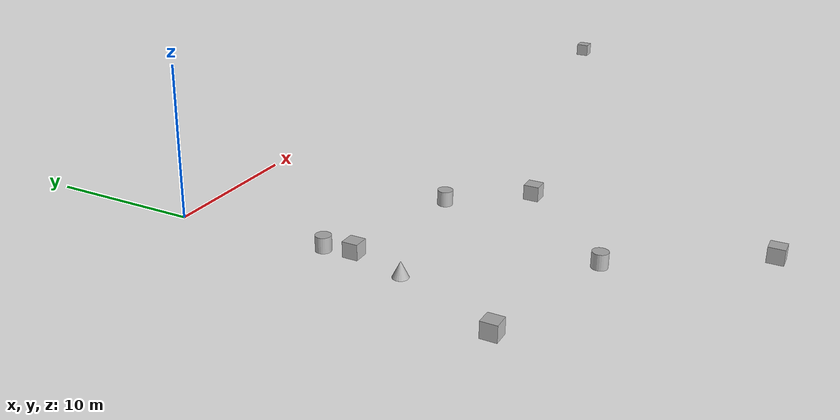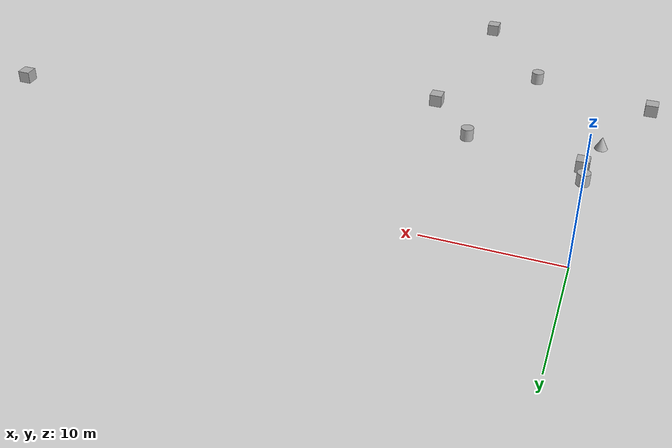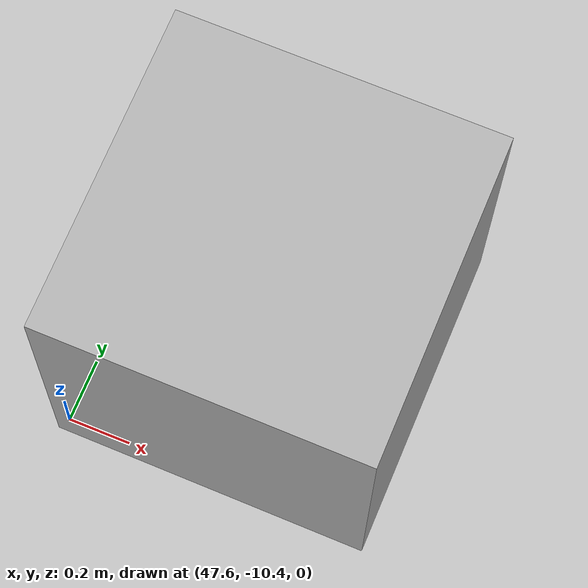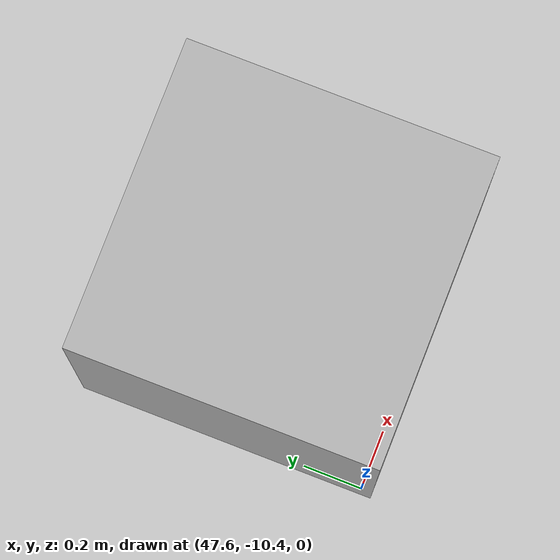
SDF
<sdf version="1.10">
 <world name="empty">
  <physics name="1ms" type="ignored">
   <max_step_size>0.001</max_step_size>
   <real_time_factor>1</real_time_factor>
   <real_time_update_rate>1000</real_time_update_rate>
  </physics>
  <plugin name="gz::sim::systems::Physics" filename="gz-sim-physics-system"/>
  <plugin name="gz::sim::systems::UserCommands" filename="gz-sim-user-commands-system"/>
  <plugin name="gz::sim::systems::SceneBroadcaster" filename="gz-sim-scene-broadcaster-system"/>
  <scene>
   <grid>false</grid>
   <ambient>0.400000006 0.400000006 0.400000006 1</ambient>
   <background>0.699999988 0.699999988 0.699999988 1</background>
   <shadows>true</shadows>
  </scene>
  <gravity>0 0 -9.8000000000000007</gravity>
  <magnetic_field>5.5644999999999998e-06 2.2875799999999999e-05 -4.2388400000000002e-05</magnetic_field>
  <atmosphere type="adiabatic"/>
  <model name="box">
   <pose>0.69357451987712349 -11.985110753051883 0.50185949781924333 0.0012477269397587671 -0.00045582970985441531 2.2585066676654038e-08</pose>
   <link name="box_link">
    <inertial>
     <inertia><ixx>0.16666</ixx><ixy>0</ixy><ixz>0</ixz><iyy>0.16666</iyy><iyz>0</iyz><izz>0.16666</izz></inertia>
     <mass>1</mass>
    </inertial>
    <collision name="box_collision"><geometry><box><size>1 1 1</size></box></geometry></collision>
    <visual name="box_visual">
     <geometry><box><size>1 1 1</size></box></geometry>
     <material>
      <ambient>0.300000012 0.300000012 0.300000012 1</ambient>
      <diffuse>0.699999988 0.699999988 0.699999988 1</diffuse>
      <specular>1 1 1 1</specular>
     </material>
    </visual>
   </link>
   <static>false</static>
  </model>
  <model name="cone">
   <pose>-0.29579046827561367 -15.584007843286578 0.49999999993296756 5.2546253485254245e-17 -7.7132841040438969e-10 -1.0595303058796868e-22</pose>
   <link name="cone_link">
    <inertial>
     <inertia>
      <ixx>0.074999999999999997</ixx>
      <ixy>0</ixy>
      <ixz>0</ixz>
      <iyy>0.074999999999999997</iyy>
      <iyz>0</iyz>
      <izz>0.074999999999999997</izz>
     </inertia>
     <mass>1</mass>
    </inertial>
    <collision name="cone_collision">
     <geometry><cone><radius>0.5</radius><length>1</length></cone></geometry>
    </collision>
    <visual name="cone_visual">
     <geometry><cone><radius>0.5</radius><length>1</length></cone></geometry>
     <material>
      <ambient>0.300000012 0.300000012 0.300000012 1</ambient>
      <diffuse>0.699999988 0.699999988 0.699999988 1</diffuse>
      <specular>1 1 1 1</specular>
     </material>
    </visual>
   </link>
   <static>false</static>
  </model>
  <model name="box_0">
   <pose>13.458248157044816 -18.110918317797182 0.4999999999597356 -8.6463549466392587e-12 -2.3215706448567523e-12 1.8441425274503929e-18</pose>
   <link name="box_link">
    <inertial>
     <inertia><ixx>0.16666</ixx><ixy>0</ixy><ixz>0</ixz><iyy>0.16666</iyy><iyz>0</iyz><izz>0.16666</izz></inertia>
     <mass>1</mass>
    </inertial>
    <collision name="box_collision"><geometry><box><size>1 1 1</size></box></geometry></collision>
    <visual name="box_visual">
     <geometry><box><size>1 1 1</size></box></geometry>
     <material>
      <ambient>0.300000012 0.300000012 0.300000012 1</ambient>
      <diffuse>0.699999988 0.699999988 0.699999988 1</diffuse>
      <specular>1 1 1 1</specular>
     </material>
    </visual>
   </link>
   <static>false</static>
  </model>
  <model name="cylinder">
   <pose>0.41255362425532643 -10.083280401482723 0.50964704770108205 5.5674773538518817e-07 -4.3176687859759324e-07 -2.5208397468383906e-07</pose>
   <link name="cylinder_link">
    <inertial>
     <inertia>
      <ixx>0.14580000000000001</ixx>
      <ixy>0</ixy>
      <ixz>0</ixz>
      <iyy>0.14580000000000001</iyy>
      <iyz>0</iyz>
      <izz>0.125</izz>
     </inertia>
     <mass>1</mass>
    </inertial>
    <collision name="cylinder_collision">
     <geometry><cylinder><radius>0.5</radius><length>1</length></cylinder></geometry>
    </collision>
    <visual name="cylinder_visual">
     <geometry><cylinder><radius>0.5</radius><length>1</length></cylinder></geometry>
     <material>
      <ambient>0.300000012 0.300000012 0.300000012 1</ambient>
      <diffuse>0.699999988 0.699999988 0.699999988 1</diffuse>
      <specular>1 1 1 1</specular>
     </material>
    </visual>
   </link>
   <static>false</static>
  </model>
  <model name="cylinder_0">
   <pose>9.7988777228697437 -13.463585100805807 0.50262408949519 0.0052622216854380077 2.2028929841141618e-18 -2.0674054396126504e-19</pose>
   <link name="cylinder_link">
    <inertial>
     <inertia>
      <ixx>0.14580000000000001</ixx>
      <ixy>0</ixy>
      <ixz>0</ixz>
      <iyy>0.14580000000000001</iyy>
      <iyz>0</iyz>
      <izz>0.125</izz>
     </inertia>
     <mass>1</mass>
    </inertial>
    <collision name="cylinder_collision">
     <geometry><cylinder><radius>0.5</radius><length>1</length></cylinder></geometry>
    </collision>
    <visual name="cylinder_visual">
     <geometry><cylinder><radius>0.5</radius><length>1</length></cylinder></geometry>
     <material>
      <ambient>0.300000012 0.300000012 0.300000012 1</ambient>
      <diffuse>0.699999988 0.699999988 0.699999988 1</diffuse>
      <specular>1 1 1 1</specular>
     </material>
    </visual>
   </link>
   <static>false</static>
  </model>
  <model name="cylinder_1">
   <pose>6.2098779251258511 -24.905284150379373 0.49999942707392359 2.095250020331423e-19 -4.3892048951938632e-11 3.3150506112213691e-20</pose>
   <link name="cylinder_link">
    <inertial>
     <inertia>
      <ixx>0.14580000000000001</ixx>
      <ixy>0</ixy>
      <ixz>0</ixz>
      <iyy>0.14580000000000001</iyy>
      <iyz>0</iyz>
      <izz>0.125</izz>
     </inertia>
     <mass>1</mass>
    </inertial>
    <collision name="cylinder_collision">
     <geometry><cylinder><radius>0.5</radius><length>1</length></cylinder></geometry>
    </collision>
    <visual name="cylinder_visual">
     <geometry><cylinder><radius>0.5</radius><length>1</length></cylinder></geometry>
     <material>
      <ambient>0.300000012 0.300000012 0.300000012 1</ambient>
      <diffuse>0.699999988 0.699999988 0.699999988 1</diffuse>
      <specular>1 1 1 1</specular>
     </material>
    </visual>
   </link>
   <static>false</static>
  </model>
  <model name="box_1">
   <pose>48.080626031002041 -9.9373798960732351 0.50733659565500155 6.7191817585172628e-06 8.218309769234689e-06 1.2498002450084426e-05</pose>
   <link name="box_link">
    <inertial>
     <inertia><ixx>0.16666</ixx><ixy>0</ixy><ixz>0</ixz><iyy>0.16666</iyy><iyz>0</iyz><izz>0.16666</izz></inertia>
     <mass>1</mass>
    </inertial>
    <collision name="box_collision"><geometry><box><size>1 1 1</size></box></geometry></collision>
    <visual name="box_visual">
     <geometry><box><size>1 1 1</size></box></geometry>
     <material>
      <ambient>0.300000012 0.300000012 0.300000012 1</ambient>
      <diffuse>0.699999988 0.699999988 0.699999988 1</diffuse>
      <specular>1 1 1 1</specular>
     </material>
    </visual>
   </link>
   <static>false</static>
  </model>
  <model name="box_2">
   <pose>11.851795749316173 -33.572965708386747 0.499999999957631 -2.6148885744536859e-11 1.6189817380074265e-11 -7.291448821622737e-18</pose>
   <link name="box_link">
    <inertial>
     <inertia><ixx>0.16666</ixx><ixy>0</ixy><ixz>0</ixz><iyy>0.16666</iyy><iyz>0</iyz><izz>0.16666</izz></inertia>
     <mass>1</mass>
    </inertial>
    <collision name="box_collision"><geometry><box><size>1 1 1</size></box></geometry></collision>
    <visual name="box_visual">
     <geometry><box><size>1 1 1</size></box></geometry>
     <material>
      <ambient>0.300000012 0.300000012 0.300000012 1</ambient>
      <diffuse>0.699999988 0.699999988 0.699999988 1</diffuse>
      <specular>1 1 1 1</specular>
     </material>
    </visual>
   </link>
   <static>false</static>
  </model>
  <model name="box_3">
   <pose>-3.4966139978676836 -22.474844884295944 0.49999999993927319 7.6670064291562797e-22 3.4699920090283797e-11 -6.104240286341647e-23</pose>
   <link name="box_link">
    <inertial>
     <inertia><ixx>0.16666</ixx><ixy>0</ixy><ixz>0</ixz><iyy>0.16666</iyy><iyz>0</iyz><izz>0.16666</izz></inertia>
     <mass>1</mass>
    </inertial>
    <collision name="box_collision"><geometry><box><size>1 1 1</size></box></geometry></collision>
    <visual name="box_visual">
     <geometry><box><size>1 1 1</size></box></geometry>
     <material>
      <ambient>0.300000012 0.300000012 0.300000012 1</ambient>
      <diffuse>0.699999988 0.699999988 0.699999988 1</diffuse>
      <specular>1 1 1 1</specular>
     </material>
    </visual>
   </link>
   <static>false</static>
  </model>
  <light name="sun" type="directional">
   <pose>0 0 100 0 0 0</pose>
   <intensity>1</intensity>
   <direction>0 1 1</direction>
   <diffuse>0.800000012 0.800000012 0.800000012 1</diffuse>
   <specular>0.100001 0.100001 0.100001 1</specular>
   <attenuation>
    <range>1000</range>
    <linear>1</linear>
    <constant>0.90000000000000002</constant>
    <quadratic>0.001</quadratic>
   </attenuation>
   <spot><inner_angle>0</inner_angle><outer_angle>0</outer_angle><falloff>0</falloff></spot>
  </light>
 </world>
</sdf>
